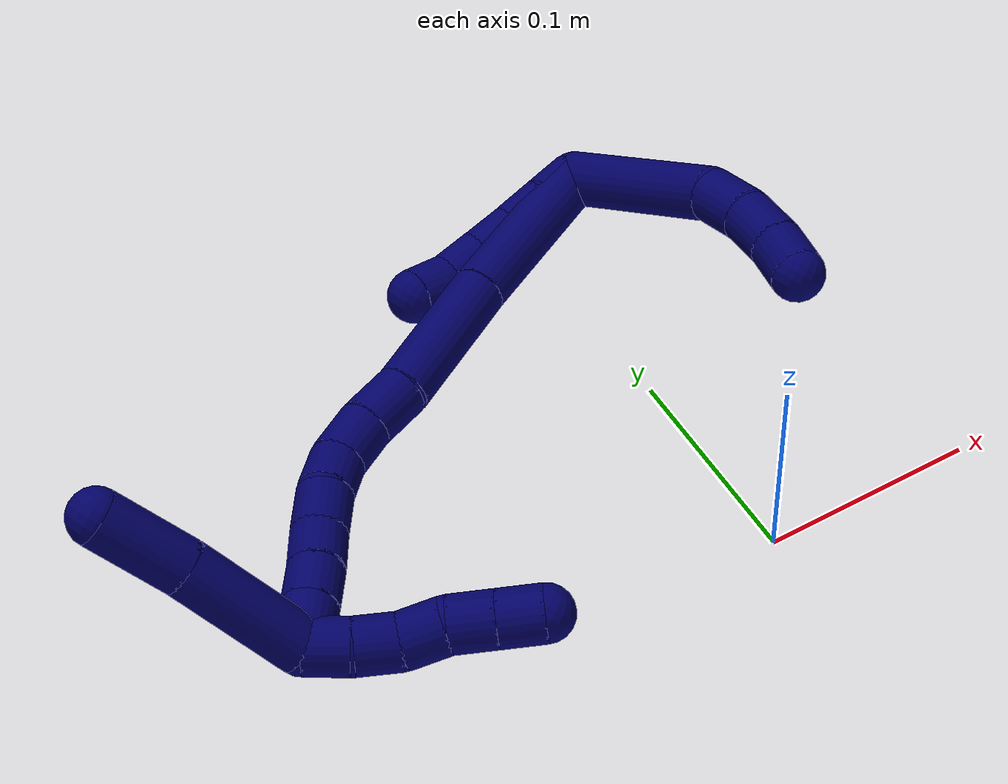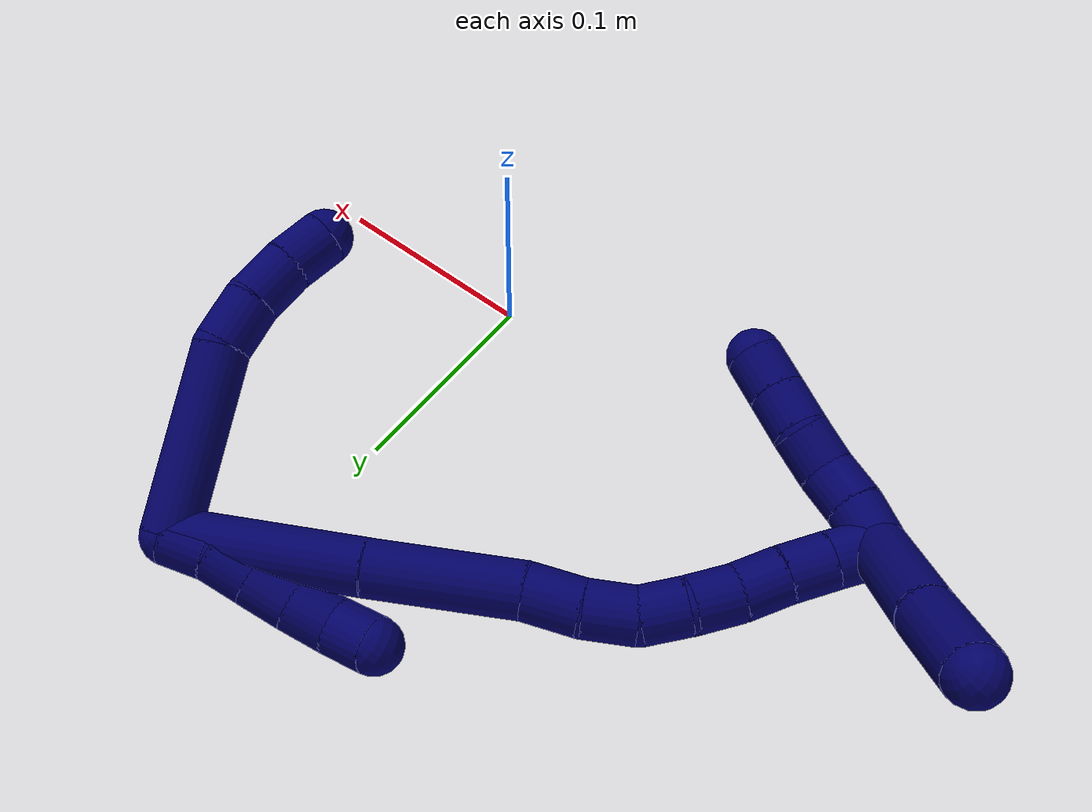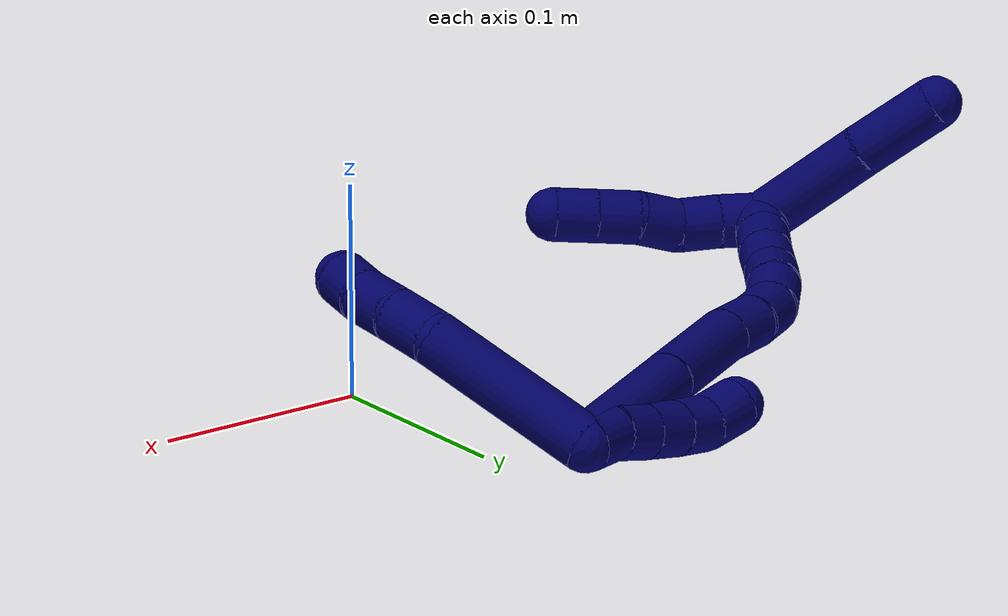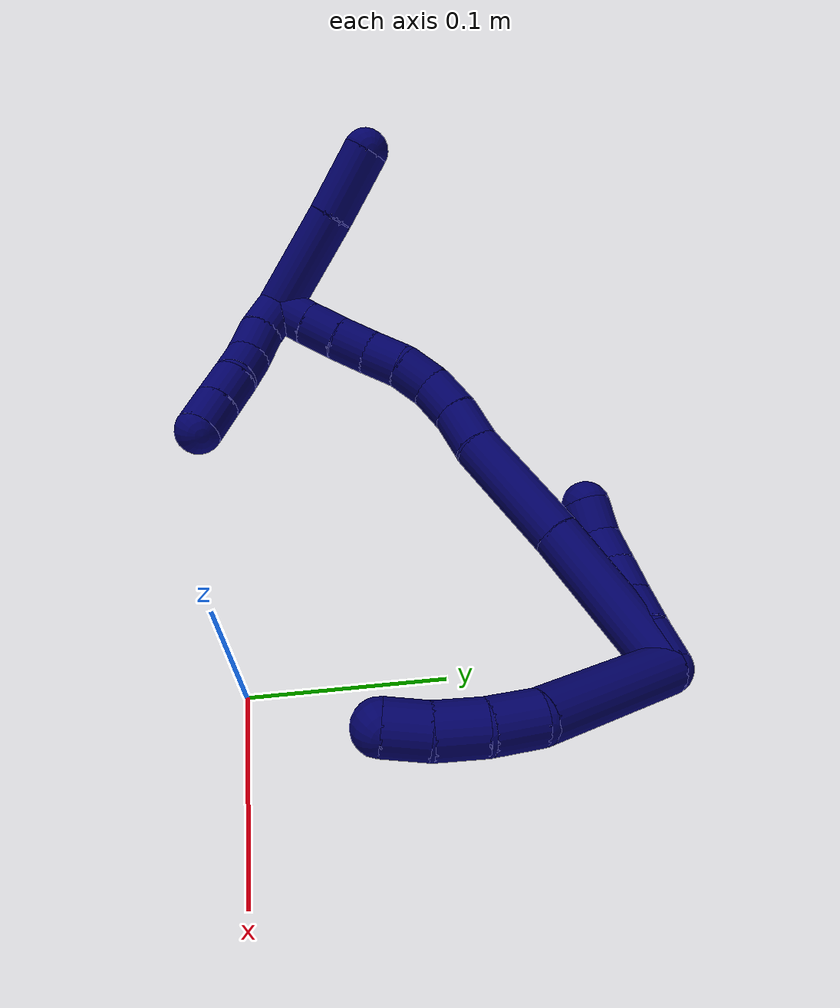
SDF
<sdf version="1.7">
 <world name="default">
  <model name="7">
   <static>0</static>
   <link name="7">
    <collision name="collision-cylinder-e_1_2_8">
     <pose>0.031267 -0.024133 0.011388 1.1299 0.864295 0.568853</pose>
     <geometry><cylinder><radius>0.0125</radius><length>0.082212</length></cylinder></geometry>
     <surface>
      <friction><ode><mu>1.16</mu><mu2>1.16</mu2><slip1>0</slip1><slip2>0</slip2></ode></friction>
      <contact><ode><kp>1e+06</kp><kd>1</kd><max_vel>0</max_vel><min_depth>0.001</min_depth></ode></contact>
     </surface>
    </collision>
    <visual name="visual-cylinder-e_1_2_8">
     <pose>0.031267 -0.024133 0.011388 1.1299 0.864295 0.568853</pose>
     <geometry><cylinder><radius>0.0125</radius><length>0.082212</length></cylinder></geometry>
     <material><ambient>0.003922 0 0.403922 1</ambient></material>
    </visual>
    <collision name="collision-cylinder-e_2_8_9">
     <pose>0.072325 -0.055101 0.022309 1.63895 0.960315 1.01727</pose>
     <geometry><cylinder><radius>0.0125</radius><length>0.0239</length></cylinder></geometry>
     <surface>
      <friction><ode><mu>1.16</mu><mu2>1.16</mu2><slip1>0</slip1><slip2>0</slip2></ode></friction>
      <contact><ode><kp>1e+06</kp><kd>1</kd><max_vel>0</max_vel><min_depth>0.001</min_depth></ode></contact>
     </surface>
    </collision>
    <visual name="visual-cylinder-e_2_8_9">
     <pose>0.072325 -0.055101 0.022309 1.63895 0.960315 1.01727</pose>
     <geometry><cylinder><radius>0.0125</radius><length>0.0239</length></cylinder></geometry>
     <material><ambient>0.003922 0 0.403922 1</ambient></material>
    </visual>
    <collision name="collision-cylinder-e_3_9_10">
     <pose>0.091337 -0.068257 0.019249 1.96016 0.933014 1.28821</pose>
     <geometry><cylinder><radius>0.0125</radius><length>0.022953</length></cylinder></geometry>
     <surface>
      <friction><ode><mu>1.16</mu><mu2>1.16</mu2><slip1>0</slip1><slip2>0</slip2></ode></friction>
      <contact><ode><kp>1e+06</kp><kd>1</kd><max_vel>0</max_vel><min_depth>0.001</min_depth></ode></contact>
     </surface>
    </collision>
    <visual name="visual-cylinder-e_3_9_10">
     <pose>0.091337 -0.068257 0.019249 1.96016 0.933014 1.28821</pose>
     <geometry><cylinder><radius>0.0125</radius><length>0.022953</length></cylinder></geometry>
     <material><ambient>0.003922 0 0.403922 1</ambient></material>
    </visual>
    <collision name="collision-cylinder-e_4_10_6">
     <pose>0.107999 -0.08102 0.013089 2.07641 0.790777 1.23231</pose>
     <geometry><cylinder><radius>0.0125</radius><length>0.020935</length></cylinder></geometry>
     <surface>
      <friction><ode><mu>1.16</mu><mu2>1.16</mu2><slip1>0</slip1><slip2>0</slip2></ode></friction>
      <contact><ode><kp>1e+06</kp><kd>1</kd><max_vel>0</max_vel><min_depth>0.001</min_depth></ode></contact>
     </surface>
    </collision>
    <visual name="visual-cylinder-e_4_10_6">
     <pose>0.107999 -0.08102 0.013089 2.07641 0.790777 1.23231</pose>
     <geometry><cylinder><radius>0.0125</radius><length>0.020935</length></cylinder></geometry>
     <material><ambient>0.003922 0 0.403922 1</ambient></material>
    </visual>
    <collision name="collision-cylinder-e_1_2_11">
     <pose>-0.002287 -0.005106 -0.008289 2.5895 -0.230755 -0.77667</pose>
     <geometry><cylinder><radius>0.0125</radius><length>0.02</length></cylinder></geometry>
     <surface>
      <friction><ode><mu>1.16</mu><mu2>1.16</mu2><slip1>0</slip1><slip2>0</slip2></ode></friction>
      <contact><ode><kp>1e+06</kp><kd>1</kd><max_vel>0</max_vel><min_depth>0.001</min_depth></ode></contact>
     </surface>
    </collision>
    <visual name="visual-cylinder-e_1_2_11">
     <pose>-0.002287 -0.005106 -0.008289 2.5895 -0.230755 -0.77667</pose>
     <geometry><cylinder><radius>0.0125</radius><length>0.02</length></cylinder></geometry>
     <material><ambient>0.003922 0 0.403922 1</ambient></material>
    </visual>
    <collision name="collision-cylinder-e_2_11_12">
     <pose>-0.007454 -0.01306 -0.02572 2.83953 -0.292155 -1.53695</pose>
     <geometry><cylinder><radius>0.0125</radius><length>0.02</length></cylinder></geometry>
     <surface>
      <friction><ode><mu>1.16</mu><mu2>1.16</mu2><slip1>0</slip1><slip2>0</slip2></ode></friction>
      <contact><ode><kp>1e+06</kp><kd>1</kd><max_vel>0</max_vel><min_depth>0.001</min_depth></ode></contact>
     </surface>
    </collision>
    <visual name="visual-cylinder-e_2_11_12">
     <pose>-0.007454 -0.01306 -0.02572 2.83953 -0.292155 -1.53695</pose>
     <geometry><cylinder><radius>0.0125</radius><length>0.02</length></cylinder></geometry>
     <material><ambient>0.003922 0 0.403922 1</ambient></material>
    </visual>
    <collision name="collision-cylinder-e_3_12_13">
     <pose>-0.013419 -0.019135 -0.043811 2.79562 -0.313589 -1.47087</pose>
     <geometry><cylinder><radius>0.0125</radius><length>0.02</length></cylinder></geometry>
     <surface>
      <friction><ode><mu>1.16</mu><mu2>1.16</mu2><slip1>0</slip1><slip2>0</slip2></ode></friction>
      <contact><ode><kp>1e+06</kp><kd>1</kd><max_vel>0</max_vel><min_depth>0.001</min_depth></ode></contact>
     </surface>
    </collision>
    <visual name="visual-cylinder-e_3_12_13">
     <pose>-0.013419 -0.019135 -0.043811 2.79562 -0.313589 -1.47087</pose>
     <geometry><cylinder><radius>0.0125</radius><length>0.02</length></cylinder></geometry>
     <material><ambient>0.003922 0 0.403922 1</ambient></material>
    </visual>
    <collision name="collision-cylinder-e_4_13_14">
     <pose>-0.019529 -0.026093 -0.06153 2.7392 -0.307285 -1.29886</pose>
     <geometry><cylinder><radius>0.0125</radius><length>0.02</length></cylinder></geometry>
     <surface>
      <friction><ode><mu>1.16</mu><mu2>1.16</mu2><slip1>0</slip1><slip2>0</slip2></ode></friction>
      <contact><ode><kp>1e+06</kp><kd>1</kd><max_vel>0</max_vel><min_depth>0.001</min_depth></ode></contact>
     </surface>
    </collision>
    <visual name="visual-cylinder-e_4_13_14">
     <pose>-0.019529 -0.026093 -0.06153 2.7392 -0.307285 -1.29886</pose>
     <geometry><cylinder><radius>0.0125</radius><length>0.02</length></cylinder></geometry>
     <material><ambient>0.003922 0 0.403922 1</ambient></material>
    </visual>
    <collision name="collision-cylinder-e_5_14_5">
     <pose>-0.026799 -0.035793 -0.07711 2.42204 -0.438509 -1.06965</pose>
     <geometry><cylinder><radius>0.0125</radius><length>0.02</length></cylinder></geometry>
     <surface>
      <friction><ode><mu>1.16</mu><mu2>1.16</mu2><slip1>0</slip1><slip2>0</slip2></ode></friction>
      <contact><ode><kp>1e+06</kp><kd>1</kd><max_vel>0</max_vel><min_depth>0.001</min_depth></ode></contact>
     </surface>
    </collision>
    <visual name="visual-cylinder-e_5_14_5">
     <pose>-0.026799 -0.035793 -0.07711 2.42204 -0.438509 -1.06965</pose>
     <geometry><cylinder><radius>0.0125</radius><length>0.02</length></cylinder></geometry>
     <material><ambient>0.003922 0 0.403922 1</ambient></material>
    </visual>
    <collision name="collision-cylinder-e_1_2_15">
     <pose>-0.002814 -0.025347 -0.033461 2.4933 -0.066925 -0.1986</pose>
     <geometry><cylinder><radius>0.0125</radius><length>0.084144</length></cylinder></geometry>
     <surface>
      <friction><ode><mu>1.16</mu><mu2>1.16</mu2><slip1>0</slip1><slip2>0</slip2></ode></friction>
      <contact><ode><kp>1e+06</kp><kd>1</kd><max_vel>0</max_vel><min_depth>0.001</min_depth></ode></contact>
     </surface>
    </collision>
    <visual name="visual-cylinder-e_1_2_15">
     <pose>-0.002814 -0.025347 -0.033461 2.4933 -0.066925 -0.1986</pose>
     <geometry><cylinder><radius>0.0125</radius><length>0.084144</length></cylinder></geometry>
     <material><ambient>0.003922 0 0.403922 1</ambient></material>
    </visual>
    <collision name="collision-cylinder-e_2_15_16">
     <pose>-0.006548 -0.070085 -0.093725 2.51532 -0.027829 -0.085901</pose>
     <geometry><cylinder><radius>0.0125</radius><length>0.066189</length></cylinder></geometry>
     <surface>
      <friction><ode><mu>1.16</mu><mu2>1.16</mu2><slip1>0</slip1><slip2>0</slip2></ode></friction>
      <contact><ode><kp>1e+06</kp><kd>1</kd><max_vel>0</max_vel><min_depth>0.001</min_depth></ode></contact>
     </surface>
    </collision>
    <visual name="visual-cylinder-e_2_15_16">
     <pose>-0.006548 -0.070085 -0.093725 2.51532 -0.027829 -0.085901</pose>
     <geometry><cylinder><radius>0.0125</radius><length>0.066189</length></cylinder></geometry>
     <material><ambient>0.003922 0 0.403922 1</ambient></material>
    </visual>
    <collision name="collision-cylinder-e_3_16_17">
     <pose>-0.009691 -0.096075 -0.130634 2.56299 -0.182032 -0.595056</pose>
     <geometry><cylinder><radius>0.0125</radius><length>0.024545</length></cylinder></geometry>
     <surface>
      <friction><ode><mu>1.16</mu><mu2>1.16</mu2><slip1>0</slip1><slip2>0</slip2></ode></friction>
      <contact><ode><kp>1e+06</kp><kd>1</kd><max_vel>0</max_vel><min_depth>0.001</min_depth></ode></contact>
     </surface>
    </collision>
    <visual name="visual-cylinder-e_3_16_17">
     <pose>-0.009691 -0.096075 -0.130634 2.56299 -0.182032 -0.595056</pose>
     <geometry><cylinder><radius>0.0125</radius><length>0.024545</length></cylinder></geometry>
     <material><ambient>0.003922 0 0.403922 1</ambient></material>
    </visual>
    <collision name="collision-cylinder-e_4_17_18">
     <pose>-0.012223 -0.109358 -0.149922 2.5125 -0.02737 -0.084081</pose>
     <geometry><cylinder><radius>0.0125</radius><length>0.022724</length></cylinder></geometry>
     <surface>
      <friction><ode><mu>1.16</mu><mu2>1.16</mu2><slip1>0</slip1><slip2>0</slip2></ode></friction>
      <contact><ode><kp>1e+06</kp><kd>1</kd><max_vel>0</max_vel><min_depth>0.001</min_depth></ode></contact>
     </surface>
    </collision>
    <visual name="visual-cylinder-e_4_17_18">
     <pose>-0.012223 -0.109358 -0.149922 2.5125 -0.02737 -0.084081</pose>
     <geometry><cylinder><radius>0.0125</radius><length>0.022724</length></cylinder></geometry>
     <material><ambient>0.003922 0 0.403922 1</ambient></material>
    </visual>
    <collision name="collision-cylinder-e_5_18_19">
     <pose>-0.01024 -0.123651 -0.165606 2.27773 0.225347 0.481425</pose>
     <geometry><cylinder><radius>0.0125</radius><length>0.020535</length></cylinder></geometry>
     <surface>
      <friction><ode><mu>1.16</mu><mu2>1.16</mu2><slip1>0</slip1><slip2>0</slip2></ode></friction>
      <contact><ode><kp>1e+06</kp><kd>1</kd><max_vel>0</max_vel><min_depth>0.001</min_depth></ode></contact>
     </surface>
    </collision>
    <visual name="visual-cylinder-e_5_18_19">
     <pose>-0.01024 -0.123651 -0.165606 2.27773 0.225347 0.481425</pose>
     <geometry><cylinder><radius>0.0125</radius><length>0.020535</length></cylinder></geometry>
     <material><ambient>0.003922 0 0.403922 1</ambient></material>
    </visual>
    <collision name="collision-cylinder-e_6_19_20">
     <pose>-0.003842 -0.13766 -0.179337 2.41706 0.401839 0.986221</pose>
     <geometry><cylinder><radius>0.0125</radius><length>0.020986</length></cylinder></geometry>
     <surface>
      <friction><ode><mu>1.16</mu><mu2>1.16</mu2><slip1>0</slip1><slip2>0</slip2></ode></friction>
      <contact><ode><kp>1e+06</kp><kd>1</kd><max_vel>0</max_vel><min_depth>0.001</min_depth></ode></contact>
     </surface>
    </collision>
    <visual name="visual-cylinder-e_6_19_20">
     <pose>-0.003842 -0.13766 -0.179337 2.41706 0.401839 0.986221</pose>
     <geometry><cylinder><radius>0.0125</radius><length>0.020986</length></cylinder></geometry>
     <material><ambient>0.003922 0 0.403922 1</ambient></material>
    </visual>
    <collision name="collision-cylinder-e_7_20_21">
     <pose>0.004453 -0.151212 -0.19242 2.25661 0.42584 0.856127</pose>
     <geometry><cylinder><radius>0.0125</radius><length>0.020292</length></cylinder></geometry>
     <surface>
      <friction><ode><mu>1.16</mu><mu2>1.16</mu2><slip1>0</slip1><slip2>0</slip2></ode></friction>
      <contact><ode><kp>1e+06</kp><kd>1</kd><max_vel>0</max_vel><min_depth>0.001</min_depth></ode></contact>
     </surface>
    </collision>
    <visual name="visual-cylinder-e_7_20_21">
     <pose>0.004453 -0.151212 -0.19242 2.25661 0.42584 0.856127</pose>
     <geometry><cylinder><radius>0.0125</radius><length>0.020292</length></cylinder></geometry>
     <material><ambient>0.003922 0 0.403922 1</ambient></material>
    </visual>
    <collision name="collision-cylinder-e_8_21_22">
     <pose>0.012319 -0.1653 -0.204576 2.30846 0.373583 0.807371</pose>
     <geometry><cylinder><radius>0.0125</radius><length>0.020138</length></cylinder></geometry>
     <surface>
      <friction><ode><mu>1.16</mu><mu2>1.16</mu2><slip1>0</slip1><slip2>0</slip2></ode></friction>
      <contact><ode><kp>1e+06</kp><kd>1</kd><max_vel>0</max_vel><min_depth>0.001</min_depth></ode></contact>
     </surface>
    </collision>
    <visual name="visual-cylinder-e_8_21_22">
     <pose>0.012319 -0.1653 -0.204576 2.30846 0.373583 0.807371</pose>
     <geometry><cylinder><radius>0.0125</radius><length>0.020138</length></cylinder></geometry>
     <material><ambient>0.003922 0 0.403922 1</ambient></material>
    </visual>
    <collision name="collision-cylinder-e_9_22_1">
     <pose>0.019528 -0.179309 -0.217365 2.31286 0.352952 0.770396</pose>
     <geometry><cylinder><radius>0.0125</radius><length>0.020449</length></cylinder></geometry>
     <surface>
      <friction><ode><mu>1.16</mu><mu2>1.16</mu2><slip1>0</slip1><slip2>0</slip2></ode></friction>
      <contact><ode><kp>1e+06</kp><kd>1</kd><max_vel>0</max_vel><min_depth>0.001</min_depth></ode></contact>
     </surface>
    </collision>
    <visual name="visual-cylinder-e_9_22_1">
     <pose>0.019528 -0.179309 -0.217365 2.31286 0.352952 0.770396</pose>
     <geometry><cylinder><radius>0.0125</radius><length>0.020449</length></cylinder></geometry>
     <material><ambient>0.003922 0 0.403922 1</ambient></material>
    </visual>
    <collision name="collision-cylinder-e_1_1_23">
     <pose>0.031729 -0.18532 -0.218975 -0.214352 1.04856 -0.124267</pose>
     <geometry><cylinder><radius>0.0125</radius><length>0.02</length></cylinder></geometry>
     <surface>
      <friction><ode><mu>1.16</mu><mu2>1.16</mu2><slip1>0</slip1><slip2>0</slip2></ode></friction>
      <contact><ode><kp>1e+06</kp><kd>1</kd><max_vel>0</max_vel><min_depth>0.001</min_depth></ode></contact>
     </surface>
    </collision>
    <visual name="visual-cylinder-e_1_1_23">
     <pose>0.031729 -0.18532 -0.218975 -0.214352 1.04856 -0.124267</pose>
     <geometry><cylinder><radius>0.0125</radius><length>0.02</length></cylinder></geometry>
     <material><ambient>0.003922 0 0.403922 1</ambient></material>
    </visual>
    <collision name="collision-cylinder-e_2_23_24">
     <pose>0.048301 -0.182201 -0.208331 -0.342493 0.911528 -0.169141</pose>
     <geometry><cylinder><radius>0.0125</radius><length>0.02</length></cylinder></geometry>
     <surface>
      <friction><ode><mu>1.16</mu><mu2>1.16</mu2><slip1>0</slip1><slip2>0</slip2></ode></friction>
      <contact><ode><kp>1e+06</kp><kd>1</kd><max_vel>0</max_vel><min_depth>0.001</min_depth></ode></contact>
     </surface>
    </collision>
    <visual name="visual-cylinder-e_2_23_24">
     <pose>0.048301 -0.182201 -0.208331 -0.342493 0.911528 -0.169141</pose>
     <geometry><cylinder><radius>0.0125</radius><length>0.02</length></cylinder></geometry>
     <material><ambient>0.003922 0 0.403922 1</ambient></material>
    </visual>
    <collision name="collision-cylinder-e_3_24_25">
     <pose>0.062598 -0.18028 -0.194873 0.017655 0.693533 0.00638</pose>
     <geometry><cylinder><radius>0.0125</radius><length>0.02</length></cylinder></geometry>
     <surface>
      <friction><ode><mu>1.16</mu><mu2>1.16</mu2><slip1>0</slip1><slip2>0</slip2></ode></friction>
      <contact><ode><kp>1e+06</kp><kd>1</kd><max_vel>0</max_vel><min_depth>0.001</min_depth></ode></contact>
     </surface>
    </collision>
    <visual name="visual-cylinder-e_3_24_25">
     <pose>0.062598 -0.18028 -0.194873 0.017655 0.693533 0.00638</pose>
     <geometry><cylinder><radius>0.0125</radius><length>0.02</length></cylinder></geometry>
     <material><ambient>0.003922 0 0.403922 1</ambient></material>
    </visual>
    <collision name="collision-cylinder-e_4_25_26">
     <pose>0.076933 -0.179754 -0.181145 -0.109188 0.91783 -0.05399</pose>
     <geometry><cylinder><radius>0.0125</radius><length>0.02</length></cylinder></geometry>
     <surface>
      <friction><ode><mu>1.16</mu><mu2>1.16</mu2><slip1>0</slip1><slip2>0</slip2></ode></friction>
      <contact><ode><kp>1e+06</kp><kd>1</kd><max_vel>0</max_vel><min_depth>0.001</min_depth></ode></contact>
     </surface>
    </collision>
    <visual name="visual-cylinder-e_4_25_26">
     <pose>0.076933 -0.179754 -0.181145 -0.109188 0.91783 -0.05399</pose>
     <geometry><cylinder><radius>0.0125</radius><length>0.02</length></cylinder></geometry>
     <material><ambient>0.003922 0 0.403922 1</ambient></material>
    </visual>
    <collision name="collision-cylinder-e_5_26_4">
     <pose>0.092816 -0.178379 -0.169068 -0.117488 0.917358 -0.058067</pose>
     <geometry><cylinder><radius>0.0125</radius><length>0.02</length></cylinder></geometry>
     <surface>
      <friction><ode><mu>1.16</mu><mu2>1.16</mu2><slip1>0</slip1><slip2>0</slip2></ode></friction>
      <contact><ode><kp>1e+06</kp><kd>1</kd><max_vel>0</max_vel><min_depth>0.001</min_depth></ode></contact>
     </surface>
    </collision>
    <visual name="visual-cylinder-e_5_26_4">
     <pose>0.092816 -0.178379 -0.169068 -0.117488 0.917358 -0.058067</pose>
     <geometry><cylinder><radius>0.0125</radius><length>0.02</length></cylinder></geometry>
     <material><ambient>0.003922 0 0.403922 1</ambient></material>
    </visual>
    <collision name="collision-cylinder-e_1_1_27">
     <pose>-0.003707 -0.198574 -0.220644 1.31376 -1.13064 -0.90991</pose>
     <geometry><cylinder><radius>0.0125</radius><length>0.059178</length></cylinder></geometry>
     <surface>
      <friction><ode><mu>1.16</mu><mu2>1.16</mu2><slip1>0</slip1><slip2>0</slip2></ode></friction>
      <contact><ode><kp>1e+06</kp><kd>1</kd><max_vel>0</max_vel><min_depth>0.001</min_depth></ode></contact>
     </surface>
    </collision>
    <visual name="visual-cylinder-e_1_1_27">
     <pose>-0.003707 -0.198574 -0.220644 1.31376 -1.13064 -0.90991</pose>
     <geometry><cylinder><radius>0.0125</radius><length>0.059178</length></cylinder></geometry>
     <material><ambient>0.003922 0 0.403922 1</ambient></material>
    </visual>
    <collision name="collision-cylinder-e_2_27_3">
     <pose>-0.048916 -0.219469 -0.216525 1.46616 -1.12778 -1.03531</pose>
     <geometry><cylinder><radius>0.0125</radius><length>0.040822</length></cylinder></geometry>
     <surface>
      <friction><ode><mu>1.16</mu><mu2>1.16</mu2><slip1>0</slip1><slip2>0</slip2></ode></friction>
      <contact><ode><kp>1e+06</kp><kd>1</kd><max_vel>0</max_vel><min_depth>0.001</min_depth></ode></contact>
     </surface>
    </collision>
    <visual name="visual-cylinder-e_2_27_3">
     <pose>-0.048916 -0.219469 -0.216525 1.46616 -1.12778 -1.03531</pose>
     <geometry><cylinder><radius>0.0125</radius><length>0.040822</length></cylinder></geometry>
     <material><ambient>0.003922 0 0.403922 1</ambient></material>
    </visual>
    <collision name="collision-sphere-3">
     <pose>-0.067356 -0.22817 -0.215611 0 -0 0</pose>
     <geometry><sphere><radius>0.0125</radius></sphere></geometry>
     <surface>
      <friction><ode><mu>1.16</mu><mu2>1.16</mu2><slip1>0</slip1><slip2>0</slip2></ode></friction>
      <contact><ode><kp>1e+06</kp><kd>1</kd><max_vel>0</max_vel><min_depth>0.001</min_depth></ode></contact>
     </surface>
    </collision>
    <visual name="visual-sphere-3">
     <pose>-0.067356 -0.22817 -0.215611 0 -0 0</pose>
     <geometry><sphere><radius>0.0125</radius></sphere></geometry>
     <material><ambient>0.003922 0 0.403922 1</ambient></material>
    </visual>
    <collision name="collision-sphere-27">
     <pose>-0.030475 -0.210767 -0.217439 0 -0 0</pose>
     <geometry><sphere><radius>0.0125</radius></sphere></geometry>
     <surface>
      <friction><ode><mu>1.16</mu><mu2>1.16</mu2><slip1>0</slip1><slip2>0</slip2></ode></friction>
      <contact><ode><kp>1e+06</kp><kd>1</kd><max_vel>0</max_vel><min_depth>0.001</min_depth></ode></contact>
     </surface>
    </collision>
    <visual name="visual-sphere-27">
     <pose>-0.030475 -0.210767 -0.217439 0 -0 0</pose>
     <geometry><sphere><radius>0.0125</radius></sphere></geometry>
     <material><ambient>0.003922 0 0.403922 1</ambient></material>
    </visual>
    <collision name="collision-sphere-4">
     <pose>0.100756 -0.177667 -0.163031 0 -0 0</pose>
     <geometry><sphere><radius>0.0125</radius></sphere></geometry>
     <surface>
      <friction><ode><mu>1.16</mu><mu2>1.16</mu2><slip1>0</slip1><slip2>0</slip2></ode></friction>
      <contact><ode><kp>1e+06</kp><kd>1</kd><max_vel>0</max_vel><min_depth>0.001</min_depth></ode></contact>
     </surface>
    </collision>
    <visual name="visual-sphere-4">
     <pose>0.100756 -0.177667 -0.163031 0 -0 0</pose>
     <geometry><sphere><radius>0.0125</radius></sphere></geometry>
     <material><ambient>0.003922 0 0.403922 1</ambient></material>
    </visual>
    <collision name="collision-sphere-26">
     <pose>0.084876 -0.179092 -0.175105 0 -0 0</pose>
     <geometry><sphere><radius>0.0125</radius></sphere></geometry>
     <surface>
      <friction><ode><mu>1.16</mu><mu2>1.16</mu2><slip1>0</slip1><slip2>0</slip2></ode></friction>
      <contact><ode><kp>1e+06</kp><kd>1</kd><max_vel>0</max_vel><min_depth>0.001</min_depth></ode></contact>
     </surface>
    </collision>
    <visual name="visual-sphere-26">
     <pose>0.084876 -0.179092 -0.175105 0 -0 0</pose>
     <geometry><sphere><radius>0.0125</radius></sphere></geometry>
     <material><ambient>0.003922 0 0.403922 1</ambient></material>
    </visual>
    <collision name="collision-sphere-25">
     <pose>0.06899 -0.180416 -0.187184 0 -0 0</pose>
     <geometry><sphere><radius>0.0125</radius></sphere></geometry>
     <surface>
      <friction><ode><mu>1.16</mu><mu2>1.16</mu2><slip1>0</slip1><slip2>0</slip2></ode></friction>
      <contact><ode><kp>1e+06</kp><kd>1</kd><max_vel>0</max_vel><min_depth>0.001</min_depth></ode></contact>
     </surface>
    </collision>
    <visual name="visual-sphere-25">
     <pose>0.06899 -0.180416 -0.187184 0 -0 0</pose>
     <geometry><sphere><radius>0.0125</radius></sphere></geometry>
     <material><ambient>0.003922 0 0.403922 1</ambient></material>
    </visual>
    <collision name="collision-sphere-24">
     <pose>0.056205 -0.180144 -0.202561 0 -0 0</pose>
     <geometry><sphere><radius>0.0125</radius></sphere></geometry>
     <surface>
      <friction><ode><mu>1.16</mu><mu2>1.16</mu2><slip1>0</slip1><slip2>0</slip2></ode></friction>
      <contact><ode><kp>1e+06</kp><kd>1</kd><max_vel>0</max_vel><min_depth>0.001</min_depth></ode></contact>
     </surface>
    </collision>
    <visual name="visual-sphere-24">
     <pose>0.056205 -0.180144 -0.202561 0 -0 0</pose>
     <geometry><sphere><radius>0.0125</radius></sphere></geometry>
     <material><ambient>0.003922 0 0.403922 1</ambient></material>
    </visual>
    <collision name="collision-sphere-23">
     <pose>0.040396 -0.184259 -0.214101 0 -0 0</pose>
     <geometry><sphere><radius>0.0125</radius></sphere></geometry>
     <surface>
      <friction><ode><mu>1.16</mu><mu2>1.16</mu2><slip1>0</slip1><slip2>0</slip2></ode></friction>
      <contact><ode><kp>1e+06</kp><kd>1</kd><max_vel>0</max_vel><min_depth>0.001</min_depth></ode></contact>
     </surface>
    </collision>
    <visual name="visual-sphere-23">
     <pose>0.040396 -0.184259 -0.214101 0 -0 0</pose>
     <geometry><sphere><radius>0.0125</radius></sphere></geometry>
     <material><ambient>0.003922 0 0.403922 1</ambient></material>
    </visual>
    <collision name="collision-sphere-1">
     <pose>0.023062 -0.186381 -0.223849 0 -0 0</pose>
     <geometry><sphere><radius>0.0125</radius></sphere></geometry>
     <surface>
      <friction><ode><mu>1.16</mu><mu2>1.16</mu2><slip1>0</slip1><slip2>0</slip2></ode></friction>
      <contact><ode><kp>1e+06</kp><kd>1</kd><max_vel>0</max_vel><min_depth>0.001</min_depth></ode></contact>
     </surface>
    </collision>
    <visual name="visual-sphere-1">
     <pose>0.023062 -0.186381 -0.223849 0 -0 0</pose>
     <geometry><sphere><radius>0.0125</radius></sphere></geometry>
     <material><ambient>0.003922 0 0.403922 1</ambient></material>
    </visual>
    <collision name="collision-sphere-22">
     <pose>0.015994 -0.172237 -0.210881 0 -0 0</pose>
     <geometry><sphere><radius>0.0125</radius></sphere></geometry>
     <surface>
      <friction><ode><mu>1.16</mu><mu2>1.16</mu2><slip1>0</slip1><slip2>0</slip2></ode></friction>
      <contact><ode><kp>1e+06</kp><kd>1</kd><max_vel>0</max_vel><min_depth>0.001</min_depth></ode></contact>
     </surface>
    </collision>
    <visual name="visual-sphere-22">
     <pose>0.015994 -0.172237 -0.210881 0 -0 0</pose>
     <geometry><sphere><radius>0.0125</radius></sphere></geometry>
     <material><ambient>0.003922 0 0.403922 1</ambient></material>
    </visual>
    <collision name="collision-sphere-21">
     <pose>0.008644 -0.158363 -0.198272 0 -0 0</pose>
     <geometry><sphere><radius>0.0125</radius></sphere></geometry>
     <surface>
      <friction><ode><mu>1.16</mu><mu2>1.16</mu2><slip1>0</slip1><slip2>0</slip2></ode></friction>
      <contact><ode><kp>1e+06</kp><kd>1</kd><max_vel>0</max_vel><min_depth>0.001</min_depth></ode></contact>
     </surface>
    </collision>
    <visual name="visual-sphere-21">
     <pose>0.008644 -0.158363 -0.198272 0 -0 0</pose>
     <geometry><sphere><radius>0.0125</radius></sphere></geometry>
     <material><ambient>0.003922 0 0.403922 1</ambient></material>
    </visual>
    <collision name="collision-sphere-11">
     <pose>-0.004574 -0.010211 -0.016577 0 -0 0</pose>
     <geometry><sphere><radius>0.0125</radius></sphere></geometry>
     <surface>
      <friction><ode><mu>1.16</mu><mu2>1.16</mu2><slip1>0</slip1><slip2>0</slip2></ode></friction>
      <contact><ode><kp>1e+06</kp><kd>1</kd><max_vel>0</max_vel><min_depth>0.001</min_depth></ode></contact>
     </surface>
    </collision>
    <visual name="visual-sphere-11">
     <pose>-0.004574 -0.010211 -0.016577 0 -0 0</pose>
     <geometry><sphere><radius>0.0125</radius></sphere></geometry>
     <material><ambient>0.003922 0 0.403922 1</ambient></material>
    </visual>
    <collision name="collision-sphere-6">
     <pose>0.11544 -0.08746 0.009524 0 -0 0</pose>
     <geometry><sphere><radius>0.0125</radius></sphere></geometry>
     <surface>
      <friction><ode><mu>1.16</mu><mu2>1.16</mu2><slip1>0</slip1><slip2>0</slip2></ode></friction>
      <contact><ode><kp>1e+06</kp><kd>1</kd><max_vel>0</max_vel><min_depth>0.001</min_depth></ode></contact>
     </surface>
    </collision>
    <visual name="visual-sphere-6">
     <pose>0.11544 -0.08746 0.009524 0 -0 0</pose>
     <geometry><sphere><radius>0.0125</radius></sphere></geometry>
     <material><ambient>0.003922 0 0.403922 1</ambient></material>
    </visual>
    <collision name="collision-sphere-10">
     <pose>0.100558 -0.074579 0.016655 0 -0 0</pose>
     <geometry><sphere><radius>0.0125</radius></sphere></geometry>
     <surface>
      <friction><ode><mu>1.16</mu><mu2>1.16</mu2><slip1>0</slip1><slip2>0</slip2></ode></friction>
      <contact><ode><kp>1e+06</kp><kd>1</kd><max_vel>0</max_vel><min_depth>0.001</min_depth></ode></contact>
     </surface>
    </collision>
    <visual name="visual-sphere-10">
     <pose>0.100558 -0.074579 0.016655 0 -0 0</pose>
     <geometry><sphere><radius>0.0125</radius></sphere></geometry>
     <material><ambient>0.003922 0 0.403922 1</ambient></material>
    </visual>
    <collision name="collision-sphere-9">
     <pose>0.082117 -0.061935 0.021843 0 -0 0</pose>
     <geometry><sphere><radius>0.0125</radius></sphere></geometry>
     <surface>
      <friction><ode><mu>1.16</mu><mu2>1.16</mu2><slip1>0</slip1><slip2>0</slip2></ode></friction>
      <contact><ode><kp>1e+06</kp><kd>1</kd><max_vel>0</max_vel><min_depth>0.001</min_depth></ode></contact>
     </surface>
    </collision>
    <visual name="visual-sphere-9">
     <pose>0.082117 -0.061935 0.021843 0 -0 0</pose>
     <geometry><sphere><radius>0.0125</radius></sphere></geometry>
     <material><ambient>0.003922 0 0.403922 1</ambient></material>
    </visual>
    <collision name="collision-sphere-2">
     <geometry><sphere><radius>0.0125</radius></sphere></geometry>
     <surface>
      <friction><ode><mu>1.16</mu><mu2>1.16</mu2><slip1>0</slip1><slip2>0</slip2></ode></friction>
      <contact><ode><kp>1e+06</kp><kd>1</kd><max_vel>0</max_vel><min_depth>0.001</min_depth></ode></contact>
     </surface>
    </collision>
    <visual name="visual-sphere-2">
     <geometry><sphere><radius>0.0125</radius></sphere></geometry>
     <material><ambient>0.003922 0 0.403922 1</ambient></material>
    </visual>
    <collision name="collision-sphere-19">
     <pose>-0.007946 -0.13126 -0.172106 0 -0 0</pose>
     <geometry><sphere><radius>0.0125</radius></sphere></geometry>
     <surface>
      <friction><ode><mu>1.16</mu><mu2>1.16</mu2><slip1>0</slip1><slip2>0</slip2></ode></friction>
      <contact><ode><kp>1e+06</kp><kd>1</kd><max_vel>0</max_vel><min_depth>0.001</min_depth></ode></contact>
     </surface>
    </collision>
    <visual name="visual-sphere-19">
     <pose>-0.007946 -0.13126 -0.172106 0 -0 0</pose>
     <geometry><sphere><radius>0.0125</radius></sphere></geometry>
     <material><ambient>0.003922 0 0.403922 1</ambient></material>
    </visual>
    <collision name="collision-sphere-8">
     <pose>0.062534 -0.048266 0.022776 0 -0 0</pose>
     <geometry><sphere><radius>0.0125</radius></sphere></geometry>
     <surface>
      <friction><ode><mu>1.16</mu><mu2>1.16</mu2><slip1>0</slip1><slip2>0</slip2></ode></friction>
      <contact><ode><kp>1e+06</kp><kd>1</kd><max_vel>0</max_vel><min_depth>0.001</min_depth></ode></contact>
     </surface>
    </collision>
    <visual name="visual-sphere-8">
     <pose>0.062534 -0.048266 0.022776 0 -0 0</pose>
     <geometry><sphere><radius>0.0125</radius></sphere></geometry>
     <material><ambient>0.003922 0 0.403922 1</ambient></material>
    </visual>
    <collision name="collision-sphere-12">
     <pose>-0.010335 -0.015909 -0.034863 0 -0 0</pose>
     <geometry><sphere><radius>0.0125</radius></sphere></geometry>
     <surface>
      <friction><ode><mu>1.16</mu><mu2>1.16</mu2><slip1>0</slip1><slip2>0</slip2></ode></friction>
      <contact><ode><kp>1e+06</kp><kd>1</kd><max_vel>0</max_vel><min_depth>0.001</min_depth></ode></contact>
     </surface>
    </collision>
    <visual name="visual-sphere-12">
     <pose>-0.010335 -0.015909 -0.034863 0 -0 0</pose>
     <geometry><sphere><radius>0.0125</radius></sphere></geometry>
     <material><ambient>0.003922 0 0.403922 1</ambient></material>
    </visual>
    <collision name="collision-sphere-13">
     <pose>-0.016504 -0.022361 -0.05276 0 -0 0</pose>
     <geometry><sphere><radius>0.0125</radius></sphere></geometry>
     <surface>
      <friction><ode><mu>1.16</mu><mu2>1.16</mu2><slip1>0</slip1><slip2>0</slip2></ode></friction>
      <contact><ode><kp>1e+06</kp><kd>1</kd><max_vel>0</max_vel><min_depth>0.001</min_depth></ode></contact>
     </surface>
    </collision>
    <visual name="visual-sphere-13">
     <pose>-0.016504 -0.022361 -0.05276 0 -0 0</pose>
     <geometry><sphere><radius>0.0125</radius></sphere></geometry>
     <material><ambient>0.003922 0 0.403922 1</ambient></material>
    </visual>
    <collision name="collision-sphere-14">
     <pose>-0.022554 -0.029826 -0.0703 0 -0 0</pose>
     <geometry><sphere><radius>0.0125</radius></sphere></geometry>
     <surface>
      <friction><ode><mu>1.16</mu><mu2>1.16</mu2><slip1>0</slip1><slip2>0</slip2></ode></friction>
      <contact><ode><kp>1e+06</kp><kd>1</kd><max_vel>0</max_vel><min_depth>0.001</min_depth></ode></contact>
     </surface>
    </collision>
    <visual name="visual-sphere-14">
     <pose>-0.022554 -0.029826 -0.0703 0 -0 0</pose>
     <geometry><sphere><radius>0.0125</radius></sphere></geometry>
     <material><ambient>0.003922 0 0.403922 1</ambient></material>
    </visual>
    <collision name="collision-sphere-5">
     <pose>-0.031045 -0.04176 -0.083919 0 -0 0</pose>
     <geometry><sphere><radius>0.0125</radius></sphere></geometry>
     <surface>
      <friction><ode><mu>1.16</mu><mu2>1.16</mu2><slip1>0</slip1><slip2>0</slip2></ode></friction>
      <contact><ode><kp>1e+06</kp><kd>1</kd><max_vel>0</max_vel><min_depth>0.001</min_depth></ode></contact>
     </surface>
    </collision>
    <visual name="visual-sphere-5">
     <pose>-0.031045 -0.04176 -0.083919 0 -0 0</pose>
     <geometry><sphere><radius>0.0125</radius></sphere></geometry>
     <material><ambient>0.003922 0 0.403922 1</ambient></material>
    </visual>
    <collision name="collision-sphere-15">
     <pose>-0.005627 -0.050695 -0.066922 0 -0 0</pose>
     <geometry><sphere><radius>0.0125</radius></sphere></geometry>
     <surface>
      <friction><ode><mu>1.16</mu><mu2>1.16</mu2><slip1>0</slip1><slip2>0</slip2></ode></friction>
      <contact><ode><kp>1e+06</kp><kd>1</kd><max_vel>0</max_vel><min_depth>0.001</min_depth></ode></contact>
     </surface>
    </collision>
    <visual name="visual-sphere-15">
     <pose>-0.005627 -0.050695 -0.066922 0 -0 0</pose>
     <geometry><sphere><radius>0.0125</radius></sphere></geometry>
     <material><ambient>0.003922 0 0.403922 1</ambient></material>
    </visual>
    <collision name="collision-sphere-16">
     <pose>-0.007469 -0.089475 -0.120529 0 -0 0</pose>
     <geometry><sphere><radius>0.0125</radius></sphere></geometry>
     <surface>
      <friction><ode><mu>1.16</mu><mu2>1.16</mu2><slip1>0</slip1><slip2>0</slip2></ode></friction>
      <contact><ode><kp>1e+06</kp><kd>1</kd><max_vel>0</max_vel><min_depth>0.001</min_depth></ode></contact>
     </surface>
    </collision>
    <visual name="visual-sphere-16">
     <pose>-0.007469 -0.089475 -0.120529 0 -0 0</pose>
     <geometry><sphere><radius>0.0125</radius></sphere></geometry>
     <material><ambient>0.003922 0 0.403922 1</ambient></material>
    </visual>
    <collision name="collision-sphere-17">
     <pose>-0.011912 -0.102675 -0.140739 0 -0 0</pose>
     <geometry><sphere><radius>0.0125</radius></sphere></geometry>
     <surface>
      <friction><ode><mu>1.16</mu><mu2>1.16</mu2><slip1>0</slip1><slip2>0</slip2></ode></friction>
      <contact><ode><kp>1e+06</kp><kd>1</kd><max_vel>0</max_vel><min_depth>0.001</min_depth></ode></contact>
     </surface>
    </collision>
    <visual name="visual-sphere-17">
     <pose>-0.011912 -0.102675 -0.140739 0 -0 0</pose>
     <geometry><sphere><radius>0.0125</radius></sphere></geometry>
     <material><ambient>0.003922 0 0.403922 1</ambient></material>
    </visual>
    <collision name="collision-sphere-18">
     <pose>-0.012534 -0.116041 -0.159106 0 -0 0</pose>
     <geometry><sphere><radius>0.0125</radius></sphere></geometry>
     <surface>
      <friction><ode><mu>1.16</mu><mu2>1.16</mu2><slip1>0</slip1><slip2>0</slip2></ode></friction>
      <contact><ode><kp>1e+06</kp><kd>1</kd><max_vel>0</max_vel><min_depth>0.001</min_depth></ode></contact>
     </surface>
    </collision>
    <visual name="visual-sphere-18">
     <pose>-0.012534 -0.116041 -0.159106 0 -0 0</pose>
     <geometry><sphere><radius>0.0125</radius></sphere></geometry>
     <material><ambient>0.003922 0 0.403922 1</ambient></material>
    </visual>
    <collision name="collision-sphere-20">
     <pose>0.000262 -0.144061 -0.186568 0 -0 0</pose>
     <geometry><sphere><radius>0.0125</radius></sphere></geometry>
     <surface>
      <friction><ode><mu>1.16</mu><mu2>1.16</mu2><slip1>0</slip1><slip2>0</slip2></ode></friction>
      <contact><ode><kp>1e+06</kp><kd>1</kd><max_vel>0</max_vel><min_depth>0.001</min_depth></ode></contact>
     </surface>
    </collision>
    <visual name="visual-sphere-20">
     <pose>0.000262 -0.144061 -0.186568 0 -0 0</pose>
     <geometry><sphere><radius>0.0125</radius></sphere></geometry>
     <material><ambient>0.003922 0 0.403922 1</ambient></material>
    </visual>
    <inertial>
     <pose>0.014079 -0.099311 -0.105005 0 -0 0</pose>
     <mass>0.75</mass>
     <inertia>
      <ixx>0.000132</ixx>
      <ixy>0</ixy>
      <ixz>0</ixz>
      <iyy>-3.1e-05</iyy>
      <iyz>0</iyz>
      <izz>6.4e-05</izz>
     </inertia>
    </inertial>
   </link>
   <pose>0.02029 0.20046 0.039653 -0.928765 0.255561 -1.02169</pose>
  </model>
 </world>
</sdf>
